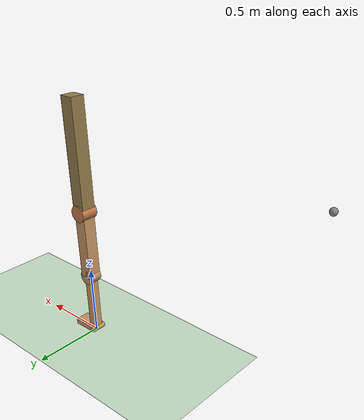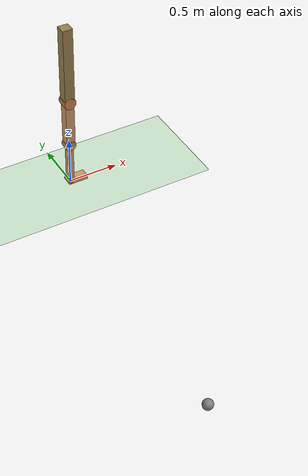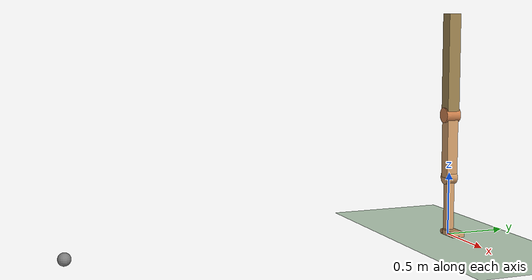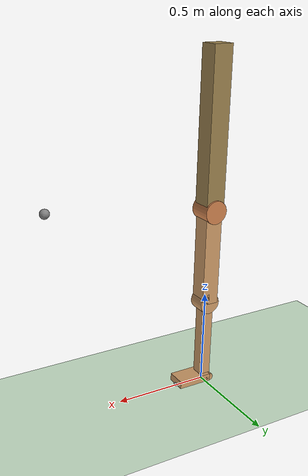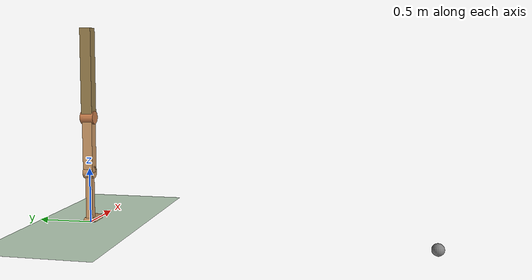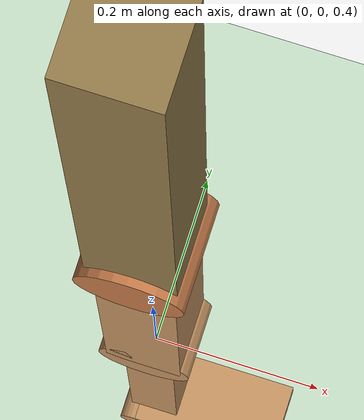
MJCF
<mujoco model="vertcal_hopper">
  <compiler angle="radian"/>

  <option timestep="0.00125"/>

  <default>
    <joint limited="true" armature="0.01" damping="1"/>
    <geom conaffinity="0" friction="1 0.1 0.1" solref="0.15 5" solimp="0 0.99 0.025 0.01" rgba="0.8 0.6 0.4 1"/>
  </default>

  <asset>
    <texture type="skybox" colorspace="auto" builtin="gradient" rgb1="1 1 1" rgb2="0 0 0" width="100" height="600"/>
    <texture type="cube" colorspace="auto" name="texgeom" builtin="flat" mark="cross" rgb1="0.8 0.6 0.4" rgb2="0.8 0.6 0.4" markrgb="1 1 1" width="127" height="762"/>
    <texture type="2d" colorspace="auto" name="texplane" builtin="checker" rgb1="0 0 0" rgb2="0.8 0.8 0.8" width="100" height="100"/>
    <material name="MatPlane" texture="texplane" texrepeat="480 1.5" specular="1" shininess="1" reflectance="0.5"/>
    <material name="geom" texture="texgeom" texuniform="true"/>
  </asset>

  <worldbody>
    <geom name="floor2" size="120 0.5 40" type="plane" conaffinity="1" material="MatPlane" rgba="0.8 0.9 0.8 1"/>
    <light pos="0 0 1.3" dir="0 0 -1" type="directional" cutoff="30" exponent="1" diffuse="1 1 1" specular="0.1 0.1 0.1"/>
    <body name="camera" pos="0 -3 0">
      <joint name="camerax" pos="0 0 0" axis="1 0 0" type="slide" limited="false" armature="0" damping="0"/>
      <geom name="camera_geom" size="0.05" pos="-0.3 0 0" friction="0.9" mass="1e-06" rgba="0.5 0.5 0.5 1"/>
      <camera name="track" pos="0 0 0.765" quat="0.707107 0.707107 0 0" mode="trackcom"/>
    </body>
    <body name="center" pos="0 0 0.965">
      <joint name="rootz" pos="0 0 0" axis="0 0 1" type="slide" limited="false" armature="0" damping="0"/>
      <geom name="center_geom" size="0.001" mass="0.1"/>
      <site name="s_hip" pos="0 0 0"/>
      <camera name="track2" pos="0 -2.8 -0.2" quat="0.707107 0.707107 0 0" mode="trackcom"/>
      <body name="hat1">
        <geom name="hat_geom" size="0.05 0.05 0.4" pos="0 0 0.4" type="box" mass="53.5" rgba="0.6 0.5 0.3 1"/>
        <geom name="hip_geom" size="0.06 0.06" quat="0.707107 0.707107 0 0" type="cylinder" mass="0" rgba="0.8 0.5 0.3 1"/>
      </body>
      <body name="thigh">
        <joint name="hip_joint" pos="0 0 0" axis="0 -1 0" range="-1.5708 1.5708" armature="0.2" damping="0"/>
        <geom name="thigh_geom" size="0.045 0.045 0.25" pos="0 0 -0.25" type="box" mass="17"/>
        <geom name="knee_geom" size="0.055 0.045" pos="0 0 -0.5" quat="0.707107 0.707107 0 0" type="cylinder" group="1" mass="0"/>
        <body name="shank" pos="0 0 -0.5">
          <joint name="knee_joint" pos="0 0 0" axis="0 -1 0" range="-2.35619 0" armature="0.2" damping="0"/>
          <geom name="shank_geom" size="0.03 0.03 0.21" pos="0 0 -0.225" type="box" mass="3.5"/>
          <site name="s_knee" pos="0 0 0"/>
          <body name="foot" pos="0 0 -0.4">
            <joint name="ankle_joint" pos="0 0 0" axis="0 -1 0" range="-1.5708 1.5708" armature="0.2" damping="0"/>
            <geom name="right_heel_geom" size="0.02 0.05" pos="-0.02 0 -0.04" quat="0.707107 0.707107 0 0" type="cylinder" friction="1 0.005 0.0001" mass="0.2"/>
            <geom name="right_foot_geom" size="0.09125 0.05 0.02" pos="0.07125 0 -0.04" type="box" friction="1 0.005 0.0001" solref="0.01 1" solimp="0 0.99 0.01" mass="1.25"/>
            <site name="s_ankle" pos="0 0 0" size="0.011"/>
            <site name="s_toe" pos="0.1625 0 -0.06" size="0.011"/>
          </body>
        </body>
      </body>
    </body>
  </worldbody>

  <actuator>
    <general name="hip_joint" joint="hip_joint" ctrlrange="-5 60" biastype="affine" gainprm="500" biasprm="0 -500 -0.01"/>
    <general name="knee_joint" joint="knee_joint" ctrlrange="-60 0" biastype="affine" gainprm="500" biasprm="0 -500 -0.01"/>
  </actuator>

  <sensor>
    <force site="s_ankle" name="heel_grf"/>
    <force site="s_toe" name="foot_grf"/>
    <touch site="s_hip" name="hip_touch_sensor"/>
    <touch site="s_knee" name="knee_touch_sensor"/>
    <touch site="s_toe" name="toe_touch_sensor"/>
  </sensor>
</mujoco>
